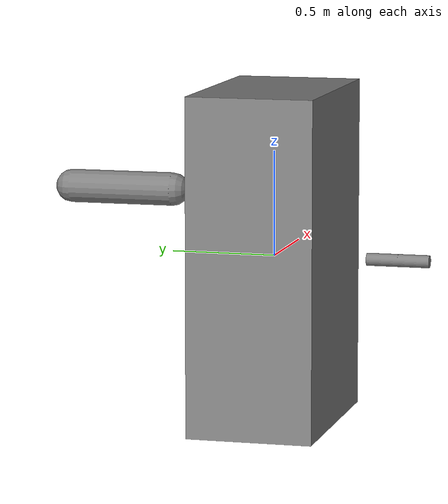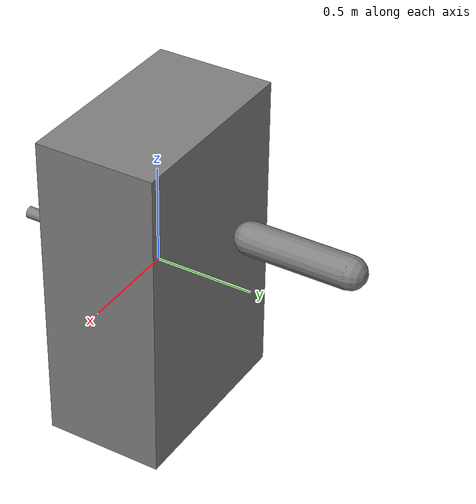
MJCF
<mujoco model="ambac_test">
  <option gravity="0 0 0" timestep="0.01" />

  <worldbody>
    <!-- Torso body at origin -->
    <body name="torso" pos="0 0 0">
      <geom type="box" size="0.5 0.3 0.8" density="1000"/>

      <!-- Left upper arm -->
      <body name="left_upper_arm" pos="0 0.5 0.3">
        <joint name="left_shoulder_pitch" type="hinge"
               axis="0 1 0" range="-90 90" damping="1"/>
        <geom type="capsule" fromto="0 0 0 0 0.5 0" size="0.08" density="800"/>
      </body>

      <!-- Thruster site on torso (we'll reposition this from Python) -->
      <site name="thruster_main" pos="0.0 -0.6 0.0" size="0.03" type="sphere" />

      <!-- Optional visual geom to show thruster nozzle direction -->
      <geom name="thruster_main_geom" type="cylinder"
            pos="0.0 -0.6 0.0"
            size="0.03 0.15"
            euler="90 0 0" />
    </body>
  </worldbody>

  <actuator>
    <!-- General actuator applying force at thruster_main site -->
    <general name="thruster_main_act"
             site="thruster_main"
             ctrllimited="true" ctrlrange="0 2000" />
  </actuator>
</mujoco>
